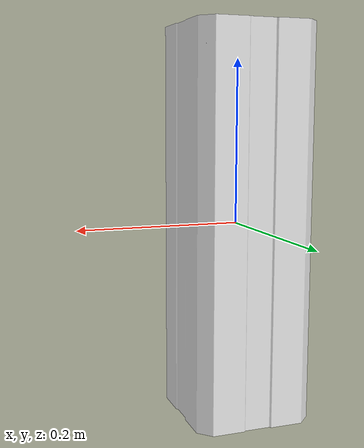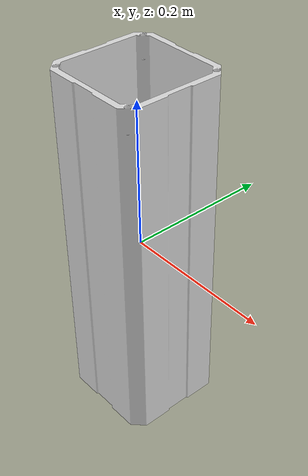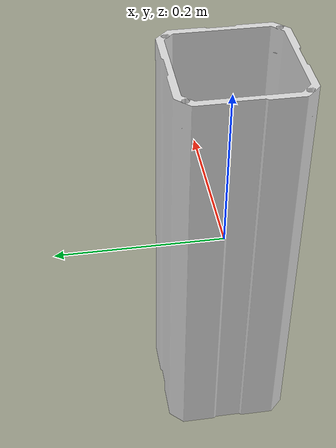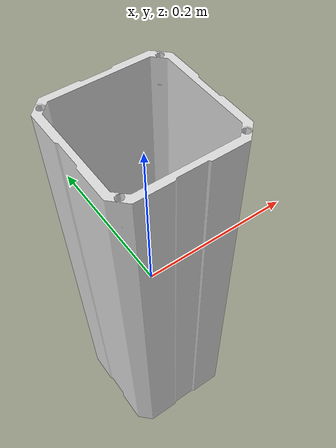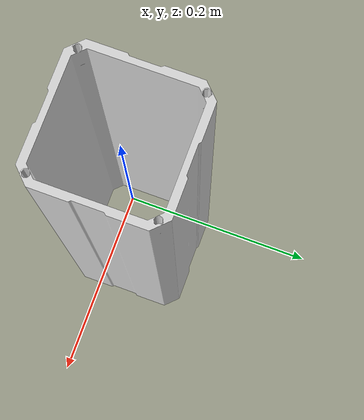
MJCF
<mujoco model="lift_mid_500mm">
  <default>
    <default class="visual">
      <geom group="2" type="mesh" contype="0" conaffinity="0"/>
    </default>
    <default class="collision">
      <geom group="3" type="mesh"/>
    </default>
  </default>
  <asset>
    <material name="mtl_lift_mid_500mm" specular="0.20000000000000004" shininess="1.0" rgba="0.85098039 0.85098039 0.85098039 1.0"/>
    <mesh file="lift_mid_500mm.obj"/>
  </asset>
  <worldbody>
    <body name="lift_mid_500mm">
      <geom material="mtl_lift_mid_500mm" mesh="lift_mid_500mm" class="visual"/>
      <geom mesh="lift_mid_500mm" class="collision"/>
    </body>
  </worldbody>
</mujoco>
